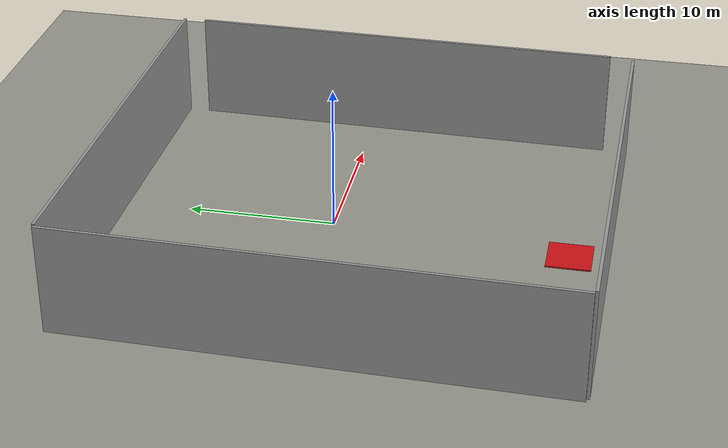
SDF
<sdf version="1.7">
 <world name="default">
  <light name="sun" type="directional">
   <pose>0 0 10 0 -0 0</pose>
   <diffuse>0.8 0.8 0.8 1</diffuse>
   <specular>0.2 0.2 0.2 1</specular>
   <attenuation>
    <range>1000</range>
    <constant>0.9</constant>
    <linear>0.01</linear>
    <quadratic>0.001</quadratic>
   </attenuation>
   <direction>-0.5 0.1 -0.9</direction>
   <spot><inner_angle>0</inner_angle><outer_angle>0</outer_angle><falloff>0</falloff></spot>
   <scene><ambient>0.9 0.9 0.9 1</ambient><shadows>0</shadows></scene>
  </light>
  <model name="ground_plane">
   <static>1</static>
   <link name="link">
    <collision name="collision">
     <geometry><plane><normal>0 0 1</normal><size>100 100</size></plane></geometry>
     <surface>
      <contact><collide_bitmask>65535</collide_bitmask></contact>
      <friction><ode><mu>100</mu><mu2>50</mu2></ode></friction>
     </surface>
    </collision>
    <visual name="visual">
     <cast_shadows>0</cast_shadows>
     <geometry><plane><normal>0 0 1</normal><size>100 100</size></plane></geometry>
     <material>
      <script><uri>file://media/materials/scripts/gazebo.material</uri><name>Gazebo/Grey</name></script>
     </material>
    </visual>
   </link>
  </model>
  <gravity>0 0 -9.8</gravity>
  <magnetic_field>6e-06 2.3e-05 -4.2e-05</magnetic_field>
  <atmosphere type="adiabatic"/>
  <physics type="ode">
   <max_step_size>0.001</max_step_size>
   <real_time_factor>1</real_time_factor>
   <real_time_update_rate>1000</real_time_update_rate>
  </physics>
  <scene><ambient>0.4 0.4 0.4 1</ambient><background>0.7 0.7 0.7 1</background><shadows>1</shadows></scene>
  <spherical_coordinates>
   <surface_model>EARTH_WGS84</surface_model>
   <latitude_deg>0</latitude_deg>
   <longitude_deg>0</longitude_deg>
   <elevation>0</elevation>
   <heading_deg>0</heading_deg>
  </spherical_coordinates>
  <model name="floor">
   <link name="link_0">
    <inertial>
     <mass>1</mass>
     <inertia>
      <ixx>0.166667</ixx>
      <ixy>0</ixy>
      <ixz>0</ixz>
      <iyy>0.166667</iyy>
      <iyz>0</iyz>
      <izz>0.166667</izz>
     </inertia>
    </inertial>
    <visual name="visual">
     <geometry><mesh><uri>model://floor/resource/floor.dae</uri><scale>1 1 1</scale></mesh></geometry>
    </visual>
    <collision name="collision">
     <geometry><mesh><uri>model://floor/resource/floor.dae</uri><scale>1 1 1</scale></mesh></geometry>
     <surface>
      <friction>
       <ode><mu>1</mu><mu2>1</mu2><fdir1>0 0 0</fdir1><slip1>0</slip1><slip2>0</slip2></ode>
       <torsional>
        <coefficient>1</coefficient>
        <patch_radius>0</patch_radius>
        <surface_radius>0</surface_radius>
        <use_patch_radius>1</use_patch_radius>
        <ode><slip>0</slip></ode>
       </torsional>
      </friction>
      <bounce><restitution_coefficient>0</restitution_coefficient><threshold>1e+06</threshold></bounce>
      <contact>
       <collide_without_contact>0</collide_without_contact>
       <collide_without_contact_bitmask>1</collide_without_contact_bitmask>
       <collide_bitmask>1</collide_bitmask>
       <ode>
        <soft_cfm>0</soft_cfm>
        <soft_erp>0.2</soft_erp>
        <kp>1e+13</kp>
        <kd>1</kd>
        <max_vel>0.01</max_vel>
        <min_depth>0</min_depth>
       </ode>
       <bullet>
        <split_impulse>1</split_impulse>
        <split_impulse_penetration_threshold>-0.01</split_impulse_penetration_threshold>
        <soft_cfm>0</soft_cfm>
        <soft_erp>0.2</soft_erp>
        <kp>1e+13</kp>
        <kd>1</kd>
       </bullet>
      </contact>
     </surface>
    </collision>
   </link>
   <static>1</static>
   <pose>-8.67475 12.6907 0.091634 0 -0 0</pose>
  </model>
  <model name="drone_pad">
   <link name="link_0">
    <inertial>
     <mass>1</mass>
     <inertia>
      <ixx>0.166667</ixx>
      <ixy>0</ixy>
      <ixz>0</ixz>
      <iyy>0.166667</iyy>
      <iyz>0</iyz>
      <izz>0.166667</izz>
     </inertia>
    </inertial>
    <visual name="visual">
     <geometry><mesh><uri>model://drone_pad/resource/drone_pad.dae</uri><scale>1 1 1</scale></mesh></geometry>
    </visual>
    <collision name="collision">
     <geometry><mesh><uri>model://drone_pad/resource/drone_pad.dae</uri><scale>1 1 1</scale></mesh></geometry>
     <surface>
      <friction>
       <ode><mu>1</mu><mu2>1</mu2><fdir1>0 0 0</fdir1><slip1>0</slip1><slip2>0</slip2></ode>
       <torsional>
        <coefficient>1</coefficient>
        <patch_radius>0</patch_radius>
        <surface_radius>0</surface_radius>
        <use_patch_radius>1</use_patch_radius>
        <ode><slip>0</slip></ode>
       </torsional>
      </friction>
      <bounce><restitution_coefficient>0</restitution_coefficient><threshold>1e+06</threshold></bounce>
      <contact>
       <collide_without_contact>0</collide_without_contact>
       <collide_without_contact_bitmask>1</collide_without_contact_bitmask>
       <collide_bitmask>1</collide_bitmask>
       <ode>
        <soft_cfm>0</soft_cfm>
        <soft_erp>0.2</soft_erp>
        <kp>1e+13</kp>
        <kd>1</kd>
        <max_vel>0.01</max_vel>
        <min_depth>0</min_depth>
       </ode>
       <bullet>
        <split_impulse>1</split_impulse>
        <split_impulse_penetration_threshold>-0.01</split_impulse_penetration_threshold>
        <soft_cfm>0</soft_cfm>
        <soft_erp>0.2</soft_erp>
        <kp>1e+13</kp>
        <kd>1</kd>
       </bullet>
      </contact>
     </surface>
    </collision>
   </link>
   <static>1</static>
   <pose>-1.2433 -16.0011 0.118825 0 -0 0</pose>
  </model>
  <model name="unit_box_clone_0">
   <pose>14.0581 -2.16066 3.83953 3e-06 0.000797 -0.014081</pose>
   <link name="link">
    <inertial>
     <mass>1</mass>
     <inertia>
      <ixx>0.166667</ixx>
      <ixy>0</ixy>
      <ixz>0</ixz>
      <iyy>0.166667</iyy>
      <iyz>0</iyz>
      <izz>0.166667</izz>
     </inertia>
    </inertial>
    <collision name="collision"><geometry><box><size>0.203829 29.7906 7.45705</size></box></geometry></collision>
    <visual name="visual">
     <geometry><box><size>0.203829 29.7906 7.45705</size></box></geometry>
     <material>
      <script><name>Gazebo/Grey</name><uri>file://media/materials/scripts/gazebo.material</uri></script>
     </material>
    </visual>
   </link>
  </model>
  <model name="unit_box_clone_0_clone_clone">
   <pose>-0.710324 14.4816 3.83954 -2e-06 -0.000778 -1.58746</pose>
   <link name="link">
    <inertial>
     <mass>1</mass>
     <inertia>
      <ixx>0.166667</ixx>
      <ixy>0</ixy>
      <ixz>0</ixz>
      <iyy>0.166667</iyy>
      <iyz>0</iyz>
      <izz>0.166667</izz>
     </inertia>
    </inertial>
    <collision name="collision"><geometry><box><size>0.203829 29.7906 7.45705</size></box></geometry></collision>
    <visual name="visual">
     <geometry><box><size>0.203829 29.7906 7.45705</size></box></geometry>
     <material>
      <script><name>Gazebo/Grey</name><uri>file://media/materials/scripts/gazebo.material</uri></script>
     </material>
    </visual>
    <static>1</static>
   </link>
  </model>
  <model name="unit_box_clone_0_clone">
   <pose>-16.1184 -1.79669 3.83958 1e-06 0.000366 -0.015752</pose>
   <link name="link">
    <inertial>
     <mass>1</mass>
     <inertia>
      <ixx>0.166667</ixx>
      <ixy>0</ixy>
      <ixz>0</ixz>
      <iyy>0.166667</iyy>
      <iyz>0</iyz>
      <izz>0.166667</izz>
     </inertia>
    </inertial>
    <collision name="collision"><geometry><box><size>0.203829 32.9833 7.45705</size></box></geometry></collision>
    <visual name="visual">
     <geometry><box><size>0.203829 32.9833 7.45705</size></box></geometry>
     <material>
      <script><name>Gazebo/Grey</name><uri>file://media/materials/scripts/gazebo.material</uri></script>
     </material>
    </visual>
    <static>1</static>
   </link>
  </model>
  <light name="sun_clone" type="directional">
   <pose>2.63151 0.632132 10 0 -0 0</pose>
   <diffuse>0.8 0.8 0.8 1</diffuse>
   <specular>0.2 0.2 0.2 1</specular>
   <direction>-0.483368 0.096674 -0.870063</direction>
   <attenuation>
    <range>1000</range>
    <constant>0.9</constant>
    <linear>0.01</linear>
    <quadratic>0.001</quadratic>
   </attenuation>
   <spot><inner_angle>0</inner_angle><outer_angle>0</outer_angle><falloff>0</falloff></spot>
  </light>
  <light name="sun_clone_0" type="directional">
   <pose>-4.1319 1.07597 10 0 -0 0</pose>
   <diffuse>0.8 0.8 0.8 1</diffuse>
   <specular>0.2 0.2 0.2 1</specular>
   <direction>-0.483368 0.096674 -0.870063</direction>
   <attenuation>
    <range>1000</range>
    <constant>0.9</constant>
    <linear>0.01</linear>
    <quadratic>0.001</quadratic>
   </attenuation>
   <spot><inner_angle>0</inner_angle><outer_angle>0</outer_angle><falloff>0</falloff></spot>
  </light>
  <light name="sun_clone_1" type="directional">
   <pose>5.3061 0.26917 10 0 -0 0</pose>
   <diffuse>0.8 0.8 0.8 1</diffuse>
   <specular>0.2 0.2 0.2 1</specular>
   <direction>-0.483368 0.096674 -0.870063</direction>
   <attenuation>
    <range>1000</range>
    <constant>0.9</constant>
    <linear>0.01</linear>
    <quadratic>0.001</quadratic>
   </attenuation>
   <spot><inner_angle>0</inner_angle><outer_angle>0</outer_angle><falloff>0</falloff></spot>
  </light>
  <light name="sun_clone_2" type="directional">
   <pose>10.3161 4.85271 10 0 -0 0</pose>
   <diffuse>0.8 0.8 0.8 1</diffuse>
   <specular>0.2 0.2 0.2 1</specular>
   <direction>-0.483368 0.096674 -0.870063</direction>
   <attenuation>
    <range>1000</range>
    <constant>0.9</constant>
    <linear>0.01</linear>
    <quadratic>0.001</quadratic>
   </attenuation>
   <spot><inner_angle>0</inner_angle><outer_angle>0</outer_angle><falloff>0</falloff></spot>
  </light>
  <model name="unit_box_clone_0_clone_clone_clone">
   <pose>-1.32709 -18.5233 3.8396 -0 -3.5e-05 -1.5797</pose>
   <link name="link">
    <inertial>
     <mass>1</mass>
     <inertia>
      <ixx>0.166667</ixx>
      <ixy>0</ixy>
      <ixz>0</ixz>
      <iyy>0.166667</iyy>
      <iyz>0</iyz>
      <izz>0.166667</izz>
     </inertia>
    </inertial>
    <collision name="collision"><geometry><box><size>0.203829 29.7906 7.45705</size></box></geometry></collision>
    <visual name="visual">
     <geometry><box><size>0.203829 29.7906 7.45705</size></box></geometry>
     <material>
      <script><name>Gazebo/Grey</name><uri>file://media/materials/scripts/gazebo.material</uri></script>
     </material>
    </visual>
    <static>1</static>
   </link>
  </model>
 </world>
</sdf>
